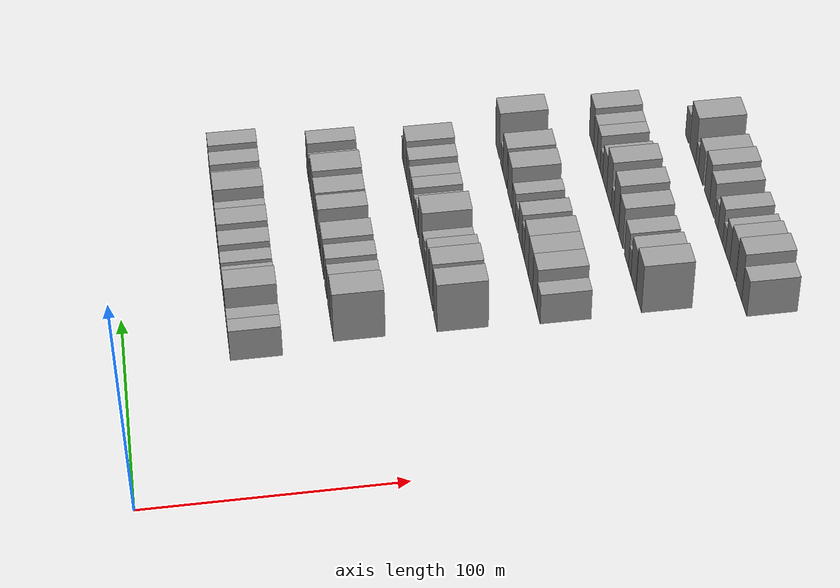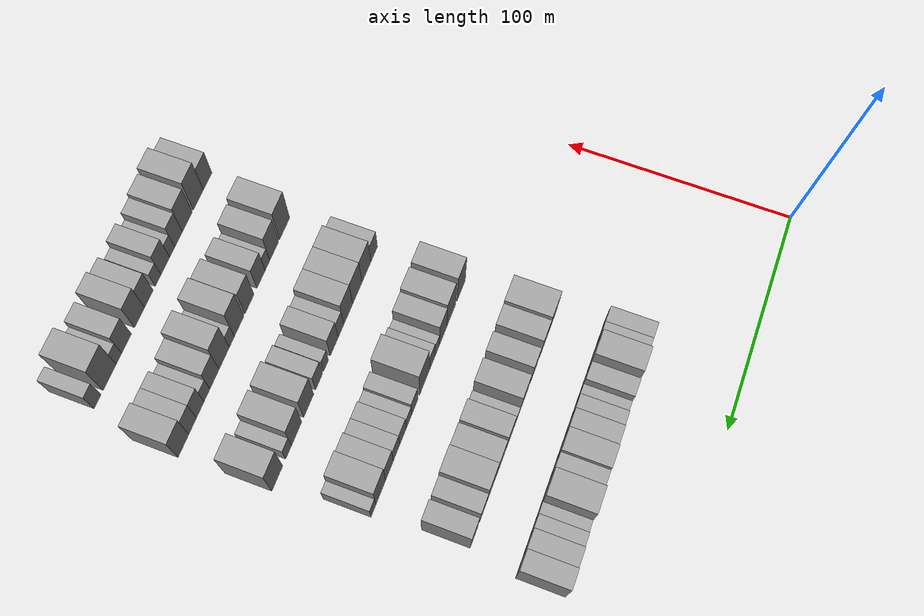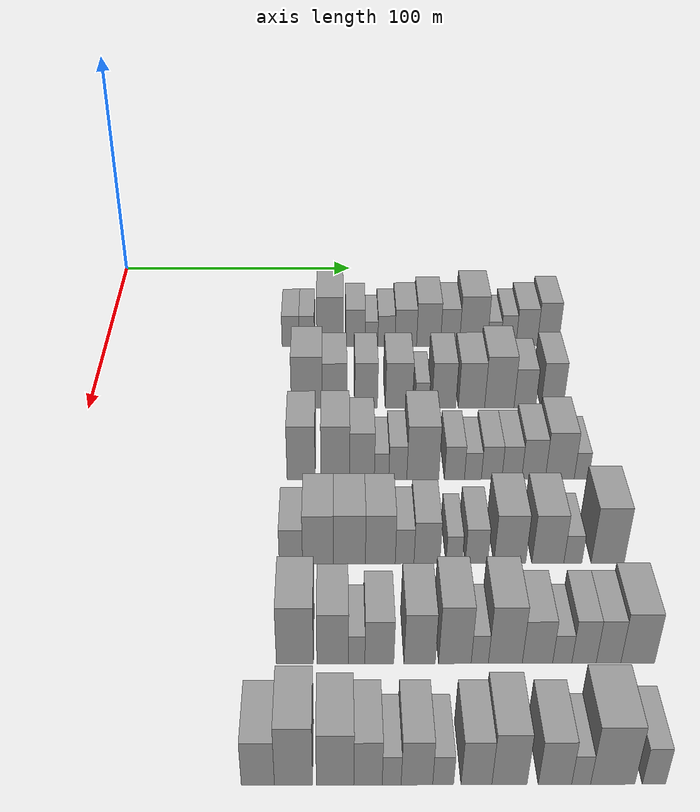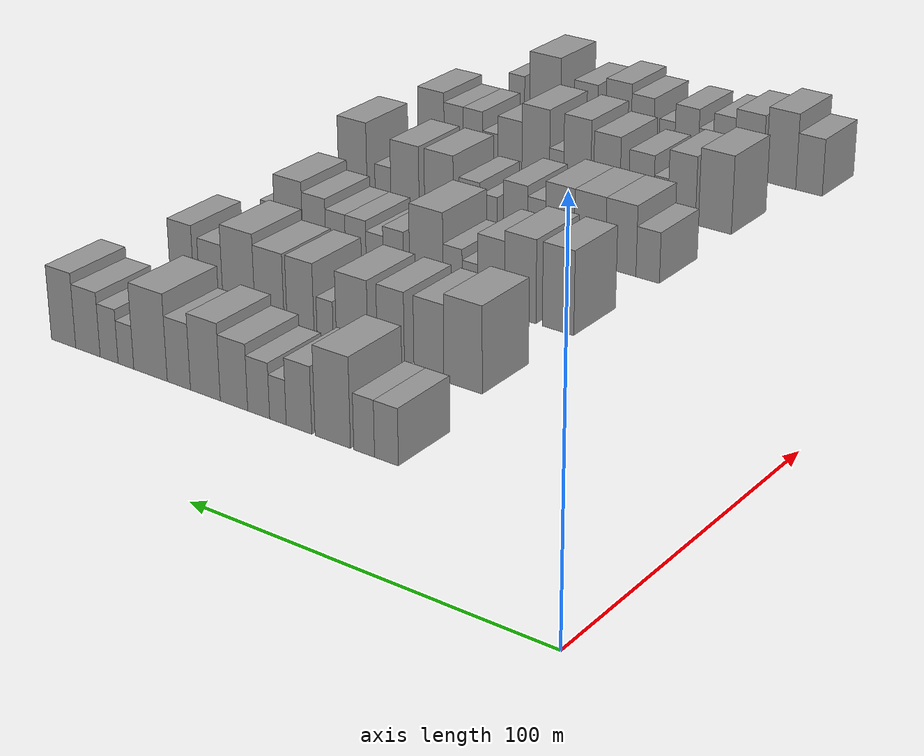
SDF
<sdf version="1.6">
 <world name="default">
  <model name="building_79">
   <static>1</static>
   <pose>50.0000 75.4647 0 0.000000 0.000000 0.000000</pose>
   <link name="link">
    <pose>0 0 7.50 0 0 0</pose>
    <collision name="collision"><geometry><box><size>20.0000 6.9942 15.0000</size></box></geometry></collision>
    <visual name="visual">
     <cast_shadows>0</cast_shadows>
     <geometry><box><size>20.0000 6.9942 15.0000</size></box></geometry>
     <material>
      <script>
       <uri>model://grey_wall/materials/scripts</uri>
       <uri>model://grey_wall/materials/textures</uri>
       <name>vrc/grey_wall</name>
      </script>
     </material>
    </visual>
   </link>
  </model>
  <model name="building_80">
   <static>1</static>
   <pose>50.0000 82.0440 0 0.000000 0.000000 0.000000</pose>
   <link name="link">
    <pose>0 0 7.50 0 0 0</pose>
    <collision name="collision"><geometry><box><size>20.0000 6.1644 15.0000</size></box></geometry></collision>
    <visual name="visual">
     <cast_shadows>0</cast_shadows>
     <geometry><box><size>20.0000 6.1644 15.0000</size></box></geometry>
     <material>
      <script>
       <uri>model://grey_wall/materials/scripts</uri>
       <uri>model://grey_wall/materials/textures</uri>
       <name>vrc/grey_wall</name>
      </script>
     </material>
    </visual>
   </link>
  </model>
  <model name="building_81">
   <static>1</static>
   <pose>50.0000 91.4857 0 0.000000 0.000000 0.000000</pose>
   <link name="link">
    <pose>0 0 12.00 0 0 0</pose>
    <collision name="collision"><geometry><box><size>20.0000 10.7189 24.0000</size></box></geometry></collision>
    <visual name="visual">
     <cast_shadows>0</cast_shadows>
     <geometry><box><size>20.0000 10.7189 24.0000</size></box></geometry>
     <material>
      <script>
       <uri>model://grey_wall/materials/scripts</uri>
       <uri>model://grey_wall/materials/textures</uri>
       <name>vrc/grey_wall</name>
      </script>
     </material>
    </visual>
   </link>
  </model>
  <model name="building_82">
   <static>1</static>
   <pose>50.0000 101.7995 0 0.000000 0.000000 0.000000</pose>
   <link name="link">
    <pose>0 0 9.00 0 0 0</pose>
    <collision name="collision"><geometry><box><size>20.0000 7.9089 18.0000</size></box></geometry></collision>
    <visual name="visual">
     <cast_shadows>0</cast_shadows>
     <geometry><box><size>20.0000 7.9089 18.0000</size></box></geometry>
     <material>
      <script>
       <uri>model://grey_wall/materials/scripts</uri>
       <uri>model://grey_wall/materials/textures</uri>
       <name>vrc/grey_wall</name>
      </script>
     </material>
    </visual>
   </link>
  </model>
  <model name="building_83">
   <static>1</static>
   <pose>50.0000 108.3506 0 0.000000 0.000000 0.000000</pose>
   <link name="link">
    <pose>0 0 6.00 0 0 0</pose>
    <collision name="collision"><geometry><box><size>20.0000 5.1933 12.0000</size></box></geometry></collision>
    <visual name="visual">
     <cast_shadows>0</cast_shadows>
     <geometry><box><size>20.0000 5.1933 12.0000</size></box></geometry>
     <material>
      <script>
       <uri>model://grey_wall/materials/scripts</uri>
       <uri>model://grey_wall/materials/textures</uri>
       <name>vrc/grey_wall</name>
      </script>
     </material>
    </visual>
   </link>
  </model>
  <model name="building_84">
   <static>1</static>
   <pose>50.0000 114.4196 0 0.000000 0.000000 0.000000</pose>
   <link name="link">
    <pose>0 0 7.50 0 0 0</pose>
    <collision name="collision"><geometry><box><size>20.0000 6.9446 15.0000</size></box></geometry></collision>
    <visual name="visual">
     <cast_shadows>0</cast_shadows>
     <geometry><box><size>20.0000 6.9446 15.0000</size></box></geometry>
     <material>
      <script>
       <uri>model://grey_wall/materials/scripts</uri>
       <uri>model://grey_wall/materials/textures</uri>
       <name>vrc/grey_wall</name>
      </script>
     </material>
    </visual>
   </link>
  </model>
  <model name="building_85">
   <static>1</static>
   <pose>50.0000 122.3066 0 0.000000 0.000000 0.000000</pose>
   <link name="link">
    <pose>0 0 9.00 0 0 0</pose>
    <collision name="collision"><geometry><box><size>20.0000 8.8296 18.0000</size></box></geometry></collision>
    <visual name="visual">
     <cast_shadows>0</cast_shadows>
     <geometry><box><size>20.0000 8.8296 18.0000</size></box></geometry>
     <material>
      <script>
       <uri>model://grey_wall/materials/scripts</uri>
       <uri>model://grey_wall/materials/textures</uri>
       <name>vrc/grey_wall</name>
      </script>
     </material>
    </visual>
   </link>
  </model>
  <model name="building_86">
   <static>1</static>
   <pose>50.0000 131.6038 0 0.000000 0.000000 0.000000</pose>
   <link name="link">
    <pose>0 0 10.50 0 0 0</pose>
    <collision name="collision"><geometry><box><size>20.0000 9.7647 21.0000</size></box></geometry></collision>
    <visual name="visual">
     <cast_shadows>0</cast_shadows>
     <geometry><box><size>20.0000 9.7647 21.0000</size></box></geometry>
     <material>
      <script>
       <uri>model://grey_wall/materials/scripts</uri>
       <uri>model://grey_wall/materials/textures</uri>
       <name>vrc/grey_wall</name>
      </script>
     </material>
    </visual>
   </link>
  </model>
  <model name="building_87">
   <static>1</static>
   <pose>50.0000 140.3548 0 0.000000 0.000000 0.000000</pose>
   <link name="link">
    <pose>0 0 9.00 0 0 0</pose>
    <collision name="collision"><geometry><box><size>20.0000 7.7373 18.0000</size></box></geometry></collision>
    <visual name="visual">
     <cast_shadows>0</cast_shadows>
     <geometry><box><size>20.0000 7.7373 18.0000</size></box></geometry>
     <material>
      <script>
       <uri>model://grey_wall/materials/scripts</uri>
       <uri>model://grey_wall/materials/textures</uri>
       <name>vrc/grey_wall</name>
      </script>
     </material>
    </visual>
   </link>
  </model>
  <model name="building_88">
   <static>1</static>
   <pose>50.0000 149.9115 0 0.000000 0.000000 0.000000</pose>
   <link name="link">
    <pose>0 0 12.00 0 0 0</pose>
    <collision name="collision"><geometry><box><size>20.0000 11.3761 24.0000</size></box></geometry></collision>
    <visual name="visual">
     <cast_shadows>0</cast_shadows>
     <geometry><box><size>20.0000 11.3761 24.0000</size></box></geometry>
     <material>
      <script>
       <uri>model://grey_wall/materials/scripts</uri>
       <uri>model://grey_wall/materials/textures</uri>
       <name>vrc/grey_wall</name>
      </script>
     </material>
    </visual>
   </link>
  </model>
  <model name="building_89">
   <static>1</static>
   <pose>50.0000 158.3068 0 0.000000 0.000000 0.000000</pose>
   <link name="link">
    <pose>0 0 6.00 0 0 0</pose>
    <collision name="collision"><geometry><box><size>20.0000 5.4146 12.0000</size></box></geometry></collision>
    <visual name="visual">
     <cast_shadows>0</cast_shadows>
     <geometry><box><size>20.0000 5.4146 12.0000</size></box></geometry>
     <material>
      <script>
       <uri>model://grey_wall/materials/scripts</uri>
       <uri>model://grey_wall/materials/textures</uri>
       <name>vrc/grey_wall</name>
      </script>
     </material>
    </visual>
   </link>
  </model>
  <model name="building_90">
   <static>1</static>
   <pose>50.0000 164.1331 0 0.000000 0.000000 0.000000</pose>
   <link name="link">
    <pose>0 0 7.50 0 0 0</pose>
    <collision name="collision"><geometry><box><size>20.0000 6.2380 15.0000</size></box></geometry></collision>
    <visual name="visual">
     <cast_shadows>0</cast_shadows>
     <geometry><box><size>20.0000 6.2380 15.0000</size></box></geometry>
     <material>
      <script>
       <uri>model://grey_wall/materials/scripts</uri>
       <uri>model://grey_wall/materials/textures</uri>
       <name>vrc/grey_wall</name>
      </script>
     </material>
    </visual>
   </link>
  </model>
  <model name="building_91">
   <static>1</static>
   <pose>50.0000 171.5712 0 0.000000 0.000000 0.000000</pose>
   <link name="link">
    <pose>0 0 9.00 0 0 0</pose>
    <collision name="collision"><geometry><box><size>20.0000 8.6383 18.0000</size></box></geometry></collision>
    <visual name="visual">
     <cast_shadows>0</cast_shadows>
     <geometry><box><size>20.0000 8.6383 18.0000</size></box></geometry>
     <material>
      <script>
       <uri>model://grey_wall/materials/scripts</uri>
       <uri>model://grey_wall/materials/textures</uri>
       <name>vrc/grey_wall</name>
      </script>
     </material>
    </visual>
   </link>
  </model>
  <model name="building_92">
   <static>1</static>
   <pose>50.0000 180.2404 0 0.000000 0.000000 0.000000</pose>
   <link name="link">
    <pose>0 0 10.50 0 0 0</pose>
    <collision name="collision"><geometry><box><size>20.0000 8.7001 21.0000</size></box></geometry></collision>
    <visual name="visual">
     <cast_shadows>0</cast_shadows>
     <geometry><box><size>20.0000 8.7001 21.0000</size></box></geometry>
     <material>
      <script>
       <uri>model://grey_wall/materials/scripts</uri>
       <uri>model://grey_wall/materials/textures</uri>
       <name>vrc/grey_wall</name>
      </script>
     </material>
    </visual>
   </link>
  </model>
  <model name="building_222">
   <static>1</static>
   <pose>90.0000 82.7144 0 0.000000 0.000000 0.000000</pose>
   <link name="link">
    <pose>0 0 12.00 0 0 0</pose>
    <collision name="collision"><geometry><box><size>20.0000 11.6887 24.0000</size></box></geometry></collision>
    <visual name="visual">
     <cast_shadows>0</cast_shadows>
     <geometry><box><size>20.0000 11.6887 24.0000</size></box></geometry>
     <material>
      <script>
       <uri>model://grey_wall/materials/scripts</uri>
       <uri>model://grey_wall/materials/textures</uri>
       <name>vrc/grey_wall</name>
      </script>
     </material>
    </visual>
   </link>
  </model>
  <model name="building_223">
   <static>1</static>
   <pose>90.0000 93.2110 0 0.000000 0.000000 0.000000</pose>
   <link name="link">
    <pose>0 0 10.50 0 0 0</pose>
    <collision name="collision"><geometry><box><size>20.0000 9.3045 21.0000</size></box></geometry></collision>
    <visual name="visual">
     <cast_shadows>0</cast_shadows>
     <geometry><box><size>20.0000 9.3045 21.0000</size></box></geometry>
     <material>
      <script>
       <uri>model://grey_wall/materials/scripts</uri>
       <uri>model://grey_wall/materials/textures</uri>
       <name>vrc/grey_wall</name>
      </script>
     </material>
    </visual>
   </link>
  </model>
  <model name="building_224">
   <static>1</static>
   <pose>90.0000 105.1728 0 0.000000 0.000000 0.000000</pose>
   <link name="link">
    <pose>0 0 10.50 0 0 0</pose>
    <collision name="collision"><geometry><box><size>20.0000 8.6189 21.0000</size></box></geometry></collision>
    <visual name="visual">
     <cast_shadows>0</cast_shadows>
     <geometry><box><size>20.0000 8.6189 21.0000</size></box></geometry>
     <material>
      <script>
       <uri>model://grey_wall/materials/scripts</uri>
       <uri>model://grey_wall/materials/textures</uri>
       <name>vrc/grey_wall</name>
      </script>
     </material>
    </visual>
   </link>
  </model>
  <model name="building_225">
   <static>1</static>
   <pose>90.0000 117.6259 0 0.000000 0.000000 0.000000</pose>
   <link name="link">
    <pose>0 0 10.50 0 0 0</pose>
    <collision name="collision"><geometry><box><size>20.0000 10.2873 21.0000</size></box></geometry></collision>
    <visual name="visual">
     <cast_shadows>0</cast_shadows>
     <geometry><box><size>20.0000 10.2873 21.0000</size></box></geometry>
     <material>
      <script>
       <uri>model://grey_wall/materials/scripts</uri>
       <uri>model://grey_wall/materials/textures</uri>
       <name>vrc/grey_wall</name>
      </script>
     </material>
    </visual>
   </link>
  </model>
  <model name="building_226">
   <static>1</static>
   <pose>90.0000 126.4555 0 0.000000 0.000000 0.000000</pose>
   <link name="link">
    <pose>0 0 6.00 0 0 0</pose>
    <collision name="collision"><geometry><box><size>20.0000 5.3719 12.0000</size></box></geometry></collision>
    <visual name="visual">
     <cast_shadows>0</cast_shadows>
     <geometry><box><size>20.0000 5.3719 12.0000</size></box></geometry>
     <material>
      <script>
       <uri>model://grey_wall/materials/scripts</uri>
       <uri>model://grey_wall/materials/textures</uri>
       <name>vrc/grey_wall</name>
      </script>
     </material>
    </visual>
   </link>
  </model>
  <model name="building_227">
   <static>1</static>
   <pose>90.0000 134.6714 0 0.000000 0.000000 0.000000</pose>
   <link name="link">
    <pose>0 0 10.50 0 0 0</pose>
    <collision name="collision"><geometry><box><size>20.0000 9.0597 21.0000</size></box></geometry></collision>
    <visual name="visual">
     <cast_shadows>0</cast_shadows>
     <geometry><box><size>20.0000 9.0597 21.0000</size></box></geometry>
     <material>
      <script>
       <uri>model://grey_wall/materials/scripts</uri>
       <uri>model://grey_wall/materials/textures</uri>
       <name>vrc/grey_wall</name>
      </script>
     </material>
    </visual>
   </link>
  </model>
  <model name="building_228">
   <static>1</static>
   <pose>90.0000 145.1878 0 0.000000 0.000000 0.000000</pose>
   <link name="link">
    <pose>0 0 10.50 0 0 0</pose>
    <collision name="collision"><geometry><box><size>20.0000 9.9732 21.0000</size></box></geometry></collision>
    <visual name="visual">
     <cast_shadows>0</cast_shadows>
     <geometry><box><size>20.0000 9.9732 21.0000</size></box></geometry>
     <material>
      <script>
       <uri>model://grey_wall/materials/scripts</uri>
       <uri>model://grey_wall/materials/textures</uri>
       <name>vrc/grey_wall</name>
      </script>
     </material>
    </visual>
   </link>
  </model>
  <model name="building_229">
   <static>1</static>
   <pose>90.0000 155.7486 0 0.000000 0.000000 0.000000</pose>
   <link name="link">
    <pose>0 0 12.00 0 0 0</pose>
    <collision name="collision"><geometry><box><size>20.0000 11.1484 24.0000</size></box></geometry></collision>
    <visual name="visual">
     <cast_shadows>0</cast_shadows>
     <geometry><box><size>20.0000 11.1484 24.0000</size></box></geometry>
     <material>
      <script>
       <uri>model://grey_wall/materials/scripts</uri>
       <uri>model://grey_wall/materials/textures</uri>
       <name>vrc/grey_wall</name>
      </script>
     </material>
    </visual>
   </link>
  </model>
  <model name="building_230">
   <static>1</static>
   <pose>90.0000 165.4426 0 0.000000 0.000000 0.000000</pose>
   <link name="link">
    <pose>0 0 9.00 0 0 0</pose>
    <collision name="collision"><geometry><box><size>20.0000 8.2397 18.0000</size></box></geometry></collision>
    <visual name="visual">
     <cast_shadows>0</cast_shadows>
     <geometry><box><size>20.0000 8.2397 18.0000</size></box></geometry>
     <material>
      <script>
       <uri>model://grey_wall/materials/scripts</uri>
       <uri>model://grey_wall/materials/textures</uri>
       <name>vrc/grey_wall</name>
      </script>
     </material>
    </visual>
   </link>
  </model>
  <model name="building_231">
   <static>1</static>
   <pose>90.0000 175.7999 0 0.000000 0.000000 0.000000</pose>
   <link name="link">
    <pose>0 0 10.50 0 0 0</pose>
    <collision name="collision"><geometry><box><size>20.0000 8.4748 21.0000</size></box></geometry></collision>
    <visual name="visual">
     <cast_shadows>0</cast_shadows>
     <geometry><box><size>20.0000 8.4748 21.0000</size></box></geometry>
     <material>
      <script>
       <uri>model://grey_wall/materials/scripts</uri>
       <uri>model://grey_wall/materials/textures</uri>
       <name>vrc/grey_wall</name>
      </script>
     </material>
    </visual>
   </link>
  </model>
  <model name="building_358">
   <static>1</static>
   <pose>130.0000 81.4116 0 0.000000 0.000000 0.000000</pose>
   <link name="link">
    <pose>0 0 12.00 0 0 0</pose>
    <collision name="collision"><geometry><box><size>20.0000 9.8484 24.0000</size></box></geometry></collision>
    <visual name="visual">
     <cast_shadows>0</cast_shadows>
     <geometry><box><size>20.0000 9.8484 24.0000</size></box></geometry>
     <material>
      <script>
       <uri>model://grey_wall/materials/scripts</uri>
       <uri>model://grey_wall/materials/textures</uri>
       <name>vrc/grey_wall</name>
      </script>
     </material>
    </visual>
   </link>
  </model>
  <model name="building_359">
   <static>1</static>
   <pose>130.0000 93.3656 0 0.000000 0.000000 0.000000</pose>
   <link name="link">
    <pose>0 0 12.00 0 0 0</pose>
    <collision name="collision"><geometry><box><size>20.0000 10.0596 24.0000</size></box></geometry></collision>
    <visual name="visual">
     <cast_shadows>0</cast_shadows>
     <geometry><box><size>20.0000 10.0596 24.0000</size></box></geometry>
     <material>
      <script>
       <uri>model://grey_wall/materials/scripts</uri>
       <uri>model://grey_wall/materials/textures</uri>
       <name>vrc/grey_wall</name>
      </script>
     </material>
    </visual>
   </link>
  </model>
  <model name="building_360">
   <static>1</static>
   <pose>130.0000 102.7428 0 0.000000 0.000000 0.000000</pose>
   <link name="link">
    <pose>0 0 10.50 0 0 0</pose>
    <collision name="collision"><geometry><box><size>20.0000 8.6949 21.0000</size></box></geometry></collision>
    <visual name="visual">
     <cast_shadows>0</cast_shadows>
     <geometry><box><size>20.0000 8.6949 21.0000</size></box></geometry>
     <material>
      <script>
       <uri>model://grey_wall/materials/scripts</uri>
       <uri>model://grey_wall/materials/textures</uri>
       <name>vrc/grey_wall</name>
      </script>
     </material>
    </visual>
   </link>
  </model>
  <model name="building_361">
   <static>1</static>
   <pose>130.0000 109.6250 0 0.000000 0.000000 0.000000</pose>
   <link name="link">
    <pose>0 0 6.00 0 0 0</pose>
    <collision name="collision"><geometry><box><size>20.0000 5.0695 12.0000</size></box></geometry></collision>
    <visual name="visual">
     <cast_shadows>0</cast_shadows>
     <geometry><box><size>20.0000 5.0695 12.0000</size></box></geometry>
     <material>
      <script>
       <uri>model://grey_wall/materials/scripts</uri>
       <uri>model://grey_wall/materials/textures</uri>
       <name>vrc/grey_wall</name>
      </script>
     </material>
    </visual>
   </link>
  </model>
  <model name="building_362">
   <static>1</static>
   <pose>130.0000 115.3264 0 0.000000 0.000000 0.000000</pose>
   <link name="link">
    <pose>0 0 7.50 0 0 0</pose>
    <collision name="collision"><geometry><box><size>20.0000 6.3334 15.0000</size></box></geometry></collision>
    <visual name="visual">
     <cast_shadows>0</cast_shadows>
     <geometry><box><size>20.0000 6.3334 15.0000</size></box></geometry>
     <material>
      <script>
       <uri>model://grey_wall/materials/scripts</uri>
       <uri>model://grey_wall/materials/textures</uri>
       <name>vrc/grey_wall</name>
      </script>
     </material>
    </visual>
   </link>
  </model>
  <model name="building_363">
   <static>1</static>
   <pose>130.0000 124.1075 0 0.000000 0.000000 0.000000</pose>
   <link name="link">
    <pose>0 0 12.00 0 0 0</pose>
    <collision name="collision"><geometry><box><size>20.0000 11.2288 24.0000</size></box></geometry></collision>
    <visual name="visual">
     <cast_shadows>0</cast_shadows>
     <geometry><box><size>20.0000 11.2288 24.0000</size></box></geometry>
     <material>
      <script>
       <uri>model://grey_wall/materials/scripts</uri>
       <uri>model://grey_wall/materials/textures</uri>
       <name>vrc/grey_wall</name>
      </script>
     </material>
    </visual>
   </link>
  </model>
  <model name="building_364">
   <static>1</static>
   <pose>130.0000 135.2427 0 0.000000 0.000000 0.000000</pose>
   <link name="link">
    <pose>0 0 7.50 0 0 0</pose>
    <collision name="collision"><geometry><box><size>20.0000 7.0417 15.0000</size></box></geometry></collision>
    <visual name="visual">
     <cast_shadows>0</cast_shadows>
     <geometry><box><size>20.0000 7.0417 15.0000</size></box></geometry>
     <material>
      <script>
       <uri>model://grey_wall/materials/scripts</uri>
       <uri>model://grey_wall/materials/textures</uri>
       <name>vrc/grey_wall</name>
      </script>
     </material>
    </visual>
   </link>
  </model>
  <model name="building_365">
   <static>1</static>
   <pose>130.0000 141.7312 0 0.000000 0.000000 0.000000</pose>
   <link name="link">
    <pose>0 0 6.00 0 0 0</pose>
    <collision name="collision"><geometry><box><size>20.0000 5.9354 12.0000</size></box></geometry></collision>
    <visual name="visual">
     <cast_shadows>0</cast_shadows>
     <geometry><box><size>20.0000 5.9354 12.0000</size></box></geometry>
     <material>
      <script>
       <uri>model://grey_wall/materials/scripts</uri>
       <uri>model://grey_wall/materials/textures</uri>
       <name>vrc/grey_wall</name>
      </script>
     </material>
    </visual>
   </link>
  </model>
  <model name="building_366">
   <static>1</static>
   <pose>130.0000 148.3089 0 0.000000 0.000000 0.000000</pose>
   <link name="link">
    <pose>0 0 7.50 0 0 0</pose>
    <collision name="collision"><geometry><box><size>20.0000 7.2199 15.0000</size></box></geometry></collision>
    <visual name="visual">
     <cast_shadows>0</cast_shadows>
     <geometry><box><size>20.0000 7.2199 15.0000</size></box></geometry>
     <material>
      <script>
       <uri>model://grey_wall/materials/scripts</uri>
       <uri>model://grey_wall/materials/textures</uri>
       <name>vrc/grey_wall</name>
      </script>
     </material>
    </visual>
   </link>
  </model>
  <model name="building_367">
   <static>1</static>
   <pose>130.0000 155.3945 0 0.000000 0.000000 0.000000</pose>
   <link name="link">
    <pose>0 0 7.50 0 0 0</pose>
    <collision name="collision"><geometry><box><size>20.0000 6.9513 15.0000</size></box></geometry></collision>
    <visual name="visual">
     <cast_shadows>0</cast_shadows>
     <geometry><box><size>20.0000 6.9513 15.0000</size></box></geometry>
     <material>
      <script>
       <uri>model://grey_wall/materials/scripts</uri>
       <uri>model://grey_wall/materials/textures</uri>
       <name>vrc/grey_wall</name>
      </script>
     </material>
    </visual>
   </link>
  </model>
  <model name="building_368">
   <static>1</static>
   <pose>130.0000 163.0299 0 0.000000 0.000000 0.000000</pose>
   <link name="link">
    <pose>0 0 9.00 0 0 0</pose>
    <collision name="collision"><geometry><box><size>20.0000 8.3195 18.0000</size></box></geometry></collision>
    <visual name="visual">
     <cast_shadows>0</cast_shadows>
     <geometry><box><size>20.0000 8.3195 18.0000</size></box></geometry>
     <material>
      <script>
       <uri>model://grey_wall/materials/scripts</uri>
       <uri>model://grey_wall/materials/textures</uri>
       <name>vrc/grey_wall</name>
      </script>
     </material>
    </visual>
   </link>
  </model>
  <model name="building_369">
   <static>1</static>
   <pose>130.0000 172.2705 0 0.000000 0.000000 0.000000</pose>
   <link name="link">
    <pose>0 0 10.50 0 0 0</pose>
    <collision name="collision"><geometry><box><size>20.0000 10.1616 21.0000</size></box></geometry></collision>
    <visual name="visual">
     <cast_shadows>0</cast_shadows>
     <geometry><box><size>20.0000 10.1616 21.0000</size></box></geometry>
     <material>
      <script>
       <uri>model://grey_wall/materials/scripts</uri>
       <uri>model://grey_wall/materials/textures</uri>
       <name>vrc/grey_wall</name>
      </script>
     </material>
    </visual>
   </link>
  </model>
  <model name="building_370">
   <static>1</static>
   <pose>130.0000 179.8959 0 0.000000 0.000000 0.000000</pose>
   <link name="link">
    <pose>0 0 6.00 0 0 0</pose>
    <collision name="collision"><geometry><box><size>20.0000 5.0892 12.0000</size></box></geometry></collision>
    <visual name="visual">
     <cast_shadows>0</cast_shadows>
     <geometry><box><size>20.0000 5.0892 12.0000</size></box></geometry>
     <material>
      <script>
       <uri>model://grey_wall/materials/scripts</uri>
       <uri>model://grey_wall/materials/textures</uri>
       <name>vrc/grey_wall</name>
      </script>
     </material>
    </visual>
   </link>
  </model>
  <model name="building_492">
   <static>1</static>
   <pose>170.0000 78.9302 0 0.000000 0.000000 0.000000</pose>
   <link name="link">
    <pose>0 0 7.50 0 0 0</pose>
    <collision name="collision"><geometry><box><size>20.0000 7.4961 15.0000</size></box></geometry></collision>
    <visual name="visual">
     <cast_shadows>0</cast_shadows>
     <geometry><box><size>20.0000 7.4961 15.0000</size></box></geometry>
     <material>
      <script>
       <uri>model://grey_wall/materials/scripts</uri>
       <uri>model://grey_wall/materials/textures</uri>
       <name>vrc/grey_wall</name>
      </script>
     </material>
    </visual>
   </link>
  </model>
  <model name="building_493">
   <static>1</static>
   <pose>170.0000 87.6647 0 0.000000 0.000000 0.000000</pose>
   <link name="link">
    <pose>0 0 10.50 0 0 0</pose>
    <collision name="collision"><geometry><box><size>20.0000 9.9729 21.0000</size></box></geometry></collision>
    <visual name="visual">
     <cast_shadows>0</cast_shadows>
     <geometry><box><size>20.0000 9.9729 21.0000</size></box></geometry>
     <material>
      <script>
       <uri>model://grey_wall/materials/scripts</uri>
       <uri>model://grey_wall/materials/textures</uri>
       <name>vrc/grey_wall</name>
      </script>
     </material>
    </visual>
   </link>
  </model>
  <model name="building_494">
   <static>1</static>
   <pose>170.0000 97.8048 0 0.000000 0.000000 0.000000</pose>
   <link name="link">
    <pose>0 0 10.50 0 0 0</pose>
    <collision name="collision"><geometry><box><size>20.0000 10.3072 21.0000</size></box></geometry></collision>
    <visual name="visual">
     <cast_shadows>0</cast_shadows>
     <geometry><box><size>20.0000 10.3072 21.0000</size></box></geometry>
     <material>
      <script>
       <uri>model://grey_wall/materials/scripts</uri>
       <uri>model://grey_wall/materials/textures</uri>
       <name>vrc/grey_wall</name>
      </script>
     </material>
    </visual>
   </link>
  </model>
  <model name="building_495">
   <static>1</static>
   <pose>170.0000 107.7921 0 0.000000 0.000000 0.000000</pose>
   <link name="link">
    <pose>0 0 10.50 0 0 0</pose>
    <collision name="collision"><geometry><box><size>20.0000 9.6674 21.0000</size></box></geometry></collision>
    <visual name="visual">
     <cast_shadows>0</cast_shadows>
     <geometry><box><size>20.0000 9.6674 21.0000</size></box></geometry>
     <material>
      <script>
       <uri>model://grey_wall/materials/scripts</uri>
       <uri>model://grey_wall/materials/textures</uri>
       <name>vrc/grey_wall</name>
      </script>
     </material>
    </visual>
   </link>
  </model>
  <model name="building_496">
   <static>1</static>
   <pose>170.0000 115.6505 0 0.000000 0.000000 0.000000</pose>
   <link name="link">
    <pose>0 0 7.50 0 0 0</pose>
    <collision name="collision"><geometry><box><size>20.0000 6.0492 15.0000</size></box></geometry></collision>
    <visual name="visual">
     <cast_shadows>0</cast_shadows>
     <geometry><box><size>20.0000 6.0492 15.0000</size></box></geometry>
     <material>
      <script>
       <uri>model://grey_wall/materials/scripts</uri>
       <uri>model://grey_wall/materials/textures</uri>
       <name>vrc/grey_wall</name>
      </script>
     </material>
    </visual>
   </link>
  </model>
  <model name="building_497">
   <static>1</static>
   <pose>170.0000 122.8603 0 0.000000 0.000000 0.000000</pose>
   <link name="link">
    <pose>0 0 9.00 0 0 0</pose>
    <collision name="collision"><geometry><box><size>20.0000 8.3704 18.0000</size></box></geometry></collision>
    <visual name="visual">
     <cast_shadows>0</cast_shadows>
     <geometry><box><size>20.0000 8.3704 18.0000</size></box></geometry>
     <material>
      <script>
       <uri>model://grey_wall/materials/scripts</uri>
       <uri>model://grey_wall/materials/textures</uri>
       <name>vrc/grey_wall</name>
      </script>
     </material>
    </visual>
   </link>
  </model>
  <model name="building_498">
   <static>1</static>
   <pose>170.0000 131.6561 0 0.000000 0.000000 0.000000</pose>
   <link name="link">
    <pose>0 0 6.00 0 0 0</pose>
    <collision name="collision"><geometry><box><size>20.0000 5.2213 12.0000</size></box></geometry></collision>
    <visual name="visual">
     <cast_shadows>0</cast_shadows>
     <geometry><box><size>20.0000 5.2213 12.0000</size></box></geometry>
     <material>
      <script>
       <uri>model://grey_wall/materials/scripts</uri>
       <uri>model://grey_wall/materials/textures</uri>
       <name>vrc/grey_wall</name>
      </script>
     </material>
    </visual>
   </link>
  </model>
  <model name="building_499">
   <static>1</static>
   <pose>170.0000 138.8986 0 0.000000 0.000000 0.000000</pose>
   <link name="link">
    <pose>0 0 7.50 0 0 0</pose>
    <collision name="collision"><geometry><box><size>20.0000 7.2638 15.0000</size></box></geometry></collision>
    <visual name="visual">
     <cast_shadows>0</cast_shadows>
     <geometry><box><size>20.0000 7.2638 15.0000</size></box></geometry>
     <material>
      <script>
       <uri>model://grey_wall/materials/scripts</uri>
       <uri>model://grey_wall/materials/textures</uri>
       <name>vrc/grey_wall</name>
      </script>
     </material>
    </visual>
   </link>
  </model>
  <model name="building_500">
   <static>1</static>
   <pose>170.0000 149.6772 0 0.000000 0.000000 0.000000</pose>
   <link name="link">
    <pose>0 0 10.50 0 0 0</pose>
    <collision name="collision"><geometry><box><size>20.0000 10.2934 21.0000</size></box></geometry></collision>
    <visual name="visual">
     <cast_shadows>0</cast_shadows>
     <geometry><box><size>20.0000 10.2934 21.0000</size></box></geometry>
     <material>
      <script>
       <uri>model://grey_wall/materials/scripts</uri>
       <uri>model://grey_wall/materials/textures</uri>
       <name>vrc/grey_wall</name>
      </script>
     </material>
    </visual>
   </link>
  </model>
  <model name="building_501">
   <static>1</static>
   <pose>170.0000 161.9963 0 0.000000 0.000000 0.000000</pose>
   <link name="link">
    <pose>0 0 10.50 0 0 0</pose>
    <collision name="collision"><geometry><box><size>20.0000 10.3447 21.0000</size></box></geometry></collision>
    <visual name="visual">
     <cast_shadows>0</cast_shadows>
     <geometry><box><size>20.0000 10.3447 21.0000</size></box></geometry>
     <material>
      <script>
       <uri>model://grey_wall/materials/scripts</uri>
       <uri>model://grey_wall/materials/textures</uri>
       <name>vrc/grey_wall</name>
      </script>
     </material>
    </visual>
   </link>
  </model>
  <model name="building_502">
   <static>1</static>
   <pose>170.0000 170.0825 0 0.000000 0.000000 0.000000</pose>
   <link name="link">
    <pose>0 0 6.00 0 0 0</pose>
    <collision name="collision"><geometry><box><size>20.0000 5.8277 12.0000</size></box></geometry></collision>
    <visual name="visual">
     <cast_shadows>0</cast_shadows>
     <geometry><box><size>20.0000 5.8277 12.0000</size></box></geometry>
     <material>
      <script>
       <uri>model://grey_wall/materials/scripts</uri>
       <uri>model://grey_wall/materials/textures</uri>
       <name>vrc/grey_wall</name>
      </script>
     </material>
    </visual>
   </link>
  </model>
  <model name="building_503">
   <static>1</static>
   <pose>170.0000 181.3451 0 0.000000 0.000000 0.000000</pose>
   <link name="link">
    <pose>0 0 12.00 0 0 0</pose>
    <collision name="collision"><geometry><box><size>20.0000 10.6977 24.0000</size></box></geometry></collision>
    <visual name="visual">
     <cast_shadows>0</cast_shadows>
     <geometry><box><size>20.0000 10.6977 24.0000</size></box></geometry>
     <material>
      <script>
       <uri>model://grey_wall/materials/scripts</uri>
       <uri>model://grey_wall/materials/textures</uri>
       <name>vrc/grey_wall</name>
      </script>
     </material>
    </visual>
   </link>
  </model>
  <model name="building_630">
   <static>1</static>
   <pose>210.0000 81.2582 0 0.000000 0.000000 0.000000</pose>
   <link name="link">
    <pose>0 0 12.00 0 0 0</pose>
    <collision name="collision"><geometry><box><size>20.0000 10.9113 24.0000</size></box></geometry></collision>
    <visual name="visual">
     <cast_shadows>0</cast_shadows>
     <geometry><box><size>20.0000 10.9113 24.0000</size></box></geometry>
     <material>
      <script>
       <uri>model://grey_wall/materials/scripts</uri>
       <uri>model://grey_wall/materials/textures</uri>
       <name>vrc/grey_wall</name>
      </script>
     </material>
    </visual>
   </link>
  </model>
  <model name="building_631">
   <static>1</static>
   <pose>210.0000 92.3520 0 0.000000 0.000000 0.000000</pose>
   <link name="link">
    <pose>0 0 10.50 0 0 0</pose>
    <collision name="collision"><geometry><box><size>20.0000 9.2762 21.0000</size></box></geometry></collision>
    <visual name="visual">
     <cast_shadows>0</cast_shadows>
     <geometry><box><size>20.0000 9.2762 21.0000</size></box></geometry>
     <material>
      <script>
       <uri>model://grey_wall/materials/scripts</uri>
       <uri>model://grey_wall/materials/textures</uri>
       <name>vrc/grey_wall</name>
      </script>
     </material>
    </visual>
   </link>
  </model>
  <model name="building_632">
   <static>1</static>
   <pose>210.0000 99.4221 0 0.000000 0.000000 0.000000</pose>
   <link name="link">
    <pose>0 0 6.00 0 0 0</pose>
    <collision name="collision"><geometry><box><size>20.0000 4.8642 12.0000</size></box></geometry></collision>
    <visual name="visual">
     <cast_shadows>0</cast_shadows>
     <geometry><box><size>20.0000 4.8642 12.0000</size></box></geometry>
     <material>
      <script>
       <uri>model://grey_wall/materials/scripts</uri>
       <uri>model://grey_wall/materials/textures</uri>
       <name>vrc/grey_wall</name>
      </script>
     </material>
    </visual>
   </link>
  </model>
  <model name="building_633">
   <static>1</static>
   <pose>210.0000 106.1320 0 0.000000 0.000000 0.000000</pose>
   <link name="link">
    <pose>0 0 9.00 0 0 0</pose>
    <collision name="collision"><geometry><box><size>20.0000 8.5555 18.0000</size></box></geometry></collision>
    <visual name="visual">
     <cast_shadows>0</cast_shadows>
     <geometry><box><size>20.0000 8.5555 18.0000</size></box></geometry>
     <material>
      <script>
       <uri>model://grey_wall/materials/scripts</uri>
       <uri>model://grey_wall/materials/textures</uri>
       <name>vrc/grey_wall</name>
      </script>
     </material>
    </visual>
   </link>
  </model>
  <model name="building_634">
   <static>1</static>
   <pose>210.0000 118.0208 0 0.000000 0.000000 0.000000</pose>
   <link name="link">
    <pose>0 0 10.50 0 0 0</pose>
    <collision name="collision"><geometry><box><size>20.0000 9.2221 21.0000</size></box></geometry></collision>
    <visual name="visual">
     <cast_shadows>0</cast_shadows>
     <geometry><box><size>20.0000 9.2221 21.0000</size></box></geometry>
     <material>
      <script>
       <uri>model://grey_wall/materials/scripts</uri>
       <uri>model://grey_wall/materials/textures</uri>
       <name>vrc/grey_wall</name>
      </script>
     </material>
    </visual>
   </link>
  </model>
  <model name="building_635">
   <static>1</static>
   <pose>210.0000 128.4383 0 0.000000 0.000000 0.000000</pose>
   <link name="link">
    <pose>0 0 12.00 0 0 0</pose>
    <collision name="collision"><geometry><box><size>20.0000 9.6128 24.0000</size></box></geometry></collision>
    <visual name="visual">
     <cast_shadows>0</cast_shadows>
     <geometry><box><size>20.0000 9.6128 24.0000</size></box></geometry>
     <material>
      <script>
       <uri>model://grey_wall/materials/scripts</uri>
       <uri>model://grey_wall/materials/textures</uri>
       <name>vrc/grey_wall</name>
      </script>
     </material>
    </visual>
   </link>
  </model>
  <model name="building_636">
   <static>1</static>
   <pose>210.0000 135.7824 0 0.000000 0.000000 0.000000</pose>
   <link name="link">
    <pose>0 0 6.00 0 0 0</pose>
    <collision name="collision"><geometry><box><size>20.0000 5.0754 12.0000</size></box></geometry></collision>
    <visual name="visual">
     <cast_shadows>0</cast_shadows>
     <geometry><box><size>20.0000 5.0754 12.0000</size></box></geometry>
     <material>
      <script>
       <uri>model://grey_wall/materials/scripts</uri>
       <uri>model://grey_wall/materials/textures</uri>
       <name>vrc/grey_wall</name>
      </script>
     </material>
    </visual>
   </link>
  </model>
  <model name="building_637">
   <static>1</static>
   <pose>210.0000 143.3245 0 0.000000 0.000000 0.000000</pose>
   <link name="link">
    <pose>0 0 12.00 0 0 0</pose>
    <collision name="collision"><geometry><box><size>20.0000 10.0088 24.0000</size></box></geometry></collision>
    <visual name="visual">
     <cast_shadows>0</cast_shadows>
     <geometry><box><size>20.0000 10.0088 24.0000</size></box></geometry>
     <material>
      <script>
       <uri>model://grey_wall/materials/scripts</uri>
       <uri>model://grey_wall/materials/textures</uri>
       <name>vrc/grey_wall</name>
      </script>
     </material>
    </visual>
   </link>
  </model>
  <model name="building_638">
   <static>1</static>
   <pose>210.0000 152.8136 0 0.000000 0.000000 0.000000</pose>
   <link name="link">
    <pose>0 0 9.00 0 0 0</pose>
    <collision name="collision"><geometry><box><size>20.0000 8.9693 18.0000</size></box></geometry></collision>
    <visual name="visual">
     <cast_shadows>0</cast_shadows>
     <geometry><box><size>20.0000 8.9693 18.0000</size></box></geometry>
     <material>
      <script>
       <uri>model://grey_wall/materials/scripts</uri>
       <uri>model://grey_wall/materials/textures</uri>
       <name>vrc/grey_wall</name>
      </script>
     </material>
    </visual>
   </link>
  </model>
  <model name="building_639">
   <static>1</static>
   <pose>210.0000 160.1280 0 0.000000 0.000000 0.000000</pose>
   <link name="link">
    <pose>0 0 6.00 0 0 0</pose>
    <collision name="collision"><geometry><box><size>20.0000 5.6595 12.0000</size></box></geometry></collision>
    <visual name="visual">
     <cast_shadows>0</cast_shadows>
     <geometry><box><size>20.0000 5.6595 12.0000</size></box></geometry>
     <material>
      <script>
       <uri>model://grey_wall/materials/scripts</uri>
       <uri>model://grey_wall/materials/textures</uri>
       <name>vrc/grey_wall</name>
      </script>
     </material>
    </visual>
   </link>
  </model>
  <model name="building_640">
   <static>1</static>
   <pose>210.0000 166.5603 0 0.000000 0.000000 0.000000</pose>
   <link name="link">
    <pose>0 0 9.00 0 0 0</pose>
    <collision name="collision"><geometry><box><size>20.0000 7.2052 18.0000</size></box></geometry></collision>
    <visual name="visual">
     <cast_shadows>0</cast_shadows>
     <geometry><box><size>20.0000 7.2052 18.0000</size></box></geometry>
     <material>
      <script>
       <uri>model://grey_wall/materials/scripts</uri>
       <uri>model://grey_wall/materials/textures</uri>
       <name>vrc/grey_wall</name>
      </script>
     </material>
    </visual>
   </link>
  </model>
  <model name="building_641">
   <static>1</static>
   <pose>210.0000 173.8023 0 0.000000 0.000000 0.000000</pose>
   <link name="link">
    <pose>0 0 9.00 0 0 0</pose>
    <collision name="collision"><geometry><box><size>20.0000 7.2788 18.0000</size></box></geometry></collision>
    <visual name="visual">
     <cast_shadows>0</cast_shadows>
     <geometry><box><size>20.0000 7.2788 18.0000</size></box></geometry>
     <material>
      <script>
       <uri>model://grey_wall/materials/scripts</uri>
       <uri>model://grey_wall/materials/textures</uri>
       <name>vrc/grey_wall</name>
      </script>
     </material>
    </visual>
   </link>
  </model>
  <model name="building_642">
   <static>1</static>
   <pose>210.0000 182.4457 0 0.000000 0.000000 0.000000</pose>
   <link name="link">
    <pose>0 0 10.50 0 0 0</pose>
    <collision name="collision"><geometry><box><size>20.0000 10.0079 21.0000</size></box></geometry></collision>
    <visual name="visual">
     <cast_shadows>0</cast_shadows>
     <geometry><box><size>20.0000 10.0079 21.0000</size></box></geometry>
     <material>
      <script>
       <uri>model://grey_wall/materials/scripts</uri>
       <uri>model://grey_wall/materials/textures</uri>
       <name>vrc/grey_wall</name>
      </script>
     </material>
    </visual>
   </link>
  </model>
  <model name="building_758">
   <static>1</static>
   <pose>250.0000 72.3868 0 0.000000 0.000000 0.000000</pose>
   <link name="link">
    <pose>0 0 9.00 0 0 0</pose>
    <collision name="collision"><geometry><box><size>20.0000 8.8408 18.0000</size></box></geometry></collision>
    <visual name="visual">
     <cast_shadows>0</cast_shadows>
     <geometry><box><size>20.0000 8.8408 18.0000</size></box></geometry>
     <material>
      <script>
       <uri>model://grey_wall/materials/scripts</uri>
       <uri>model://grey_wall/materials/textures</uri>
       <name>vrc/grey_wall</name>
      </script>
     </material>
    </visual>
   </link>
  </model>
  <model name="building_759">
   <static>1</static>
   <pose>250.0000 81.8982 0 0.000000 0.000000 0.000000</pose>
   <link name="link">
    <pose>0 0 12.00 0 0 0</pose>
    <collision name="collision"><geometry><box><size>20.0000 10.1820 24.0000</size></box></geometry></collision>
    <visual name="visual">
     <cast_shadows>0</cast_shadows>
     <geometry><box><size>20.0000 10.1820 24.0000</size></box></geometry>
     <material>
      <script>
       <uri>model://grey_wall/materials/scripts</uri>
       <uri>model://grey_wall/materials/textures</uri>
       <name>vrc/grey_wall</name>
      </script>
     </material>
    </visual>
   </link>
  </model>
  <model name="building_760">
   <static>1</static>
   <pose>250.0000 92.9753 0 0.000000 0.000000 0.000000</pose>
   <link name="link">
    <pose>0 0 10.50 0 0 0</pose>
    <collision name="collision"><geometry><box><size>20.0000 9.9722 21.0000</size></box></geometry></collision>
    <visual name="visual">
     <cast_shadows>0</cast_shadows>
     <geometry><box><size>20.0000 9.9722 21.0000</size></box></geometry>
     <material>
      <script>
       <uri>model://grey_wall/materials/scripts</uri>
       <uri>model://grey_wall/materials/textures</uri>
       <name>vrc/grey_wall</name>
      </script>
     </material>
    </visual>
   </link>
  </model>
  <model name="building_761">
   <static>1</static>
   <pose>250.0000 101.7492 0 0.000000 0.000000 0.000000</pose>
   <link name="link">
    <pose>0 0 9.00 0 0 0</pose>
    <collision name="collision"><geometry><box><size>20.0000 7.5756 18.0000</size></box></geometry></collision>
    <visual name="visual">
     <cast_shadows>0</cast_shadows>
     <geometry><box><size>20.0000 7.5756 18.0000</size></box></geometry>
     <material>
      <script>
       <uri>model://grey_wall/materials/scripts</uri>
       <uri>model://grey_wall/materials/textures</uri>
       <name>vrc/grey_wall</name>
      </script>
     </material>
    </visual>
   </link>
  </model>
  <model name="building_762">
   <static>1</static>
   <pose>250.0000 108.0664 0 0.000000 0.000000 0.000000</pose>
   <link name="link">
    <pose>0 0 6.00 0 0 0</pose>
    <collision name="collision"><geometry><box><size>20.0000 5.0589 12.0000</size></box></geometry></collision>
    <visual name="visual">
     <cast_shadows>0</cast_shadows>
     <geometry><box><size>20.0000 5.0589 12.0000</size></box></geometry>
     <material>
      <script>
       <uri>model://grey_wall/materials/scripts</uri>
       <uri>model://grey_wall/materials/textures</uri>
       <name>vrc/grey_wall</name>
      </script>
     </material>
    </visual>
   </link>
  </model>
  <model name="building_763">
   <static>1</static>
   <pose>250.0000 114.8140 0 0.000000 0.000000 0.000000</pose>
   <link name="link">
    <pose>0 0 9.00 0 0 0</pose>
    <collision name="collision"><geometry><box><size>20.0000 8.4364 18.0000</size></box></geometry></collision>
    <visual name="visual">
     <cast_shadows>0</cast_shadows>
     <geometry><box><size>20.0000 8.4364 18.0000</size></box></geometry>
     <material>
      <script>
       <uri>model://grey_wall/materials/scripts</uri>
       <uri>model://grey_wall/materials/textures</uri>
       <name>vrc/grey_wall</name>
      </script>
     </material>
    </visual>
   </link>
  </model>
  <model name="building_764">
   <static>1</static>
   <pose>250.0000 121.8187 0 0.000000 0.000000 0.000000</pose>
   <link name="link">
    <pose>0 0 6.00 0 0 0</pose>
    <collision name="collision"><geometry><box><size>20.0000 5.5731 12.0000</size></box></geometry></collision>
    <visual name="visual">
     <cast_shadows>0</cast_shadows>
     <geometry><box><size>20.0000 5.5731 12.0000</size></box></geometry>
     <material>
      <script>
       <uri>model://grey_wall/materials/scripts</uri>
       <uri>model://grey_wall/materials/textures</uri>
       <name>vrc/grey_wall</name>
      </script>
     </material>
    </visual>
   </link>
  </model>
  <model name="building_765">
   <static>1</static>
   <pose>250.0000 130.7166 0 0.000000 0.000000 0.000000</pose>
   <link name="link">
    <pose>0 0 9.00 0 0 0</pose>
    <collision name="collision"><geometry><box><size>20.0000 8.2226 18.0000</size></box></geometry></collision>
    <visual name="visual">
     <cast_shadows>0</cast_shadows>
     <geometry><box><size>20.0000 8.2226 18.0000</size></box></geometry>
     <material>
      <script>
       <uri>model://grey_wall/materials/scripts</uri>
       <uri>model://grey_wall/materials/textures</uri>
       <name>vrc/grey_wall</name>
      </script>
     </material>
    </visual>
   </link>
  </model>
  <model name="building_766">
   <static>1</static>
   <pose>250.0000 139.5265 0 0.000000 0.000000 0.000000</pose>
   <link name="link">
    <pose>0 0 10.50 0 0 0</pose>
    <collision name="collision"><geometry><box><size>20.0000 9.3973 21.0000</size></box></geometry></collision>
    <visual name="visual">
     <cast_shadows>0</cast_shadows>
     <geometry><box><size>20.0000 9.3973 21.0000</size></box></geometry>
     <material>
      <script>
       <uri>model://grey_wall/materials/scripts</uri>
       <uri>model://grey_wall/materials/textures</uri>
       <name>vrc/grey_wall</name>
      </script>
     </material>
    </visual>
   </link>
  </model>
  <model name="building_767">
   <static>1</static>
   <pose>250.0000 151.6856 0 0.000000 0.000000 0.000000</pose>
   <link name="link">
    <pose>0 0 9.00 0 0 0</pose>
    <collision name="collision"><geometry><box><size>20.0000 8.9208 18.0000</size></box></geometry></collision>
    <visual name="visual">
     <cast_shadows>0</cast_shadows>
     <geometry><box><size>20.0000 8.9208 18.0000</size></box></geometry>
     <material>
      <script>
       <uri>model://grey_wall/materials/scripts</uri>
       <uri>model://grey_wall/materials/textures</uri>
       <name>vrc/grey_wall</name>
      </script>
     </material>
    </visual>
   </link>
  </model>
  <model name="building_768">
   <static>1</static>
   <pose>250.0000 158.6774 0 0.000000 0.000000 0.000000</pose>
   <link name="link">
    <pose>0 0 6.00 0 0 0</pose>
    <collision name="collision"><geometry><box><size>20.0000 5.0629 12.0000</size></box></geometry></collision>
    <visual name="visual">
     <cast_shadows>0</cast_shadows>
     <geometry><box><size>20.0000 5.0629 12.0000</size></box></geometry>
     <material>
      <script>
       <uri>model://grey_wall/materials/scripts</uri>
       <uri>model://grey_wall/materials/textures</uri>
       <name>vrc/grey_wall</name>
      </script>
     </material>
    </visual>
   </link>
  </model>
  <model name="building_769">
   <static>1</static>
   <pose>250.0000 167.1284 0 0.000000 0.000000 0.000000</pose>
   <link name="link">
    <pose>0 0 12.00 0 0 0</pose>
    <collision name="collision"><geometry><box><size>20.0000 11.8392 24.0000</size></box></geometry></collision>
    <visual name="visual">
     <cast_shadows>0</cast_shadows>
     <geometry><box><size>20.0000 11.8392 24.0000</size></box></geometry>
     <material>
      <script>
       <uri>model://grey_wall/materials/scripts</uri>
       <uri>model://grey_wall/materials/textures</uri>
       <name>vrc/grey_wall</name>
      </script>
     </material>
    </visual>
   </link>
  </model>
  <model name="building_770">
   <static>1</static>
   <pose>250.0000 178.1547 0 0.000000 0.000000 0.000000</pose>
   <link name="link">
    <pose>0 0 7.50 0 0 0</pose>
    <collision name="collision"><geometry><box><size>20.0000 6.2134 15.0000</size></box></geometry></collision>
    <visual name="visual">
     <cast_shadows>0</cast_shadows>
     <geometry><box><size>20.0000 6.2134 15.0000</size></box></geometry>
     <material>
      <script>
       <uri>model://grey_wall/materials/scripts</uri>
       <uri>model://grey_wall/materials/textures</uri>
       <name>vrc/grey_wall</name>
      </script>
     </material>
    </visual>
   </link>
  </model>
 </world>
</sdf>
